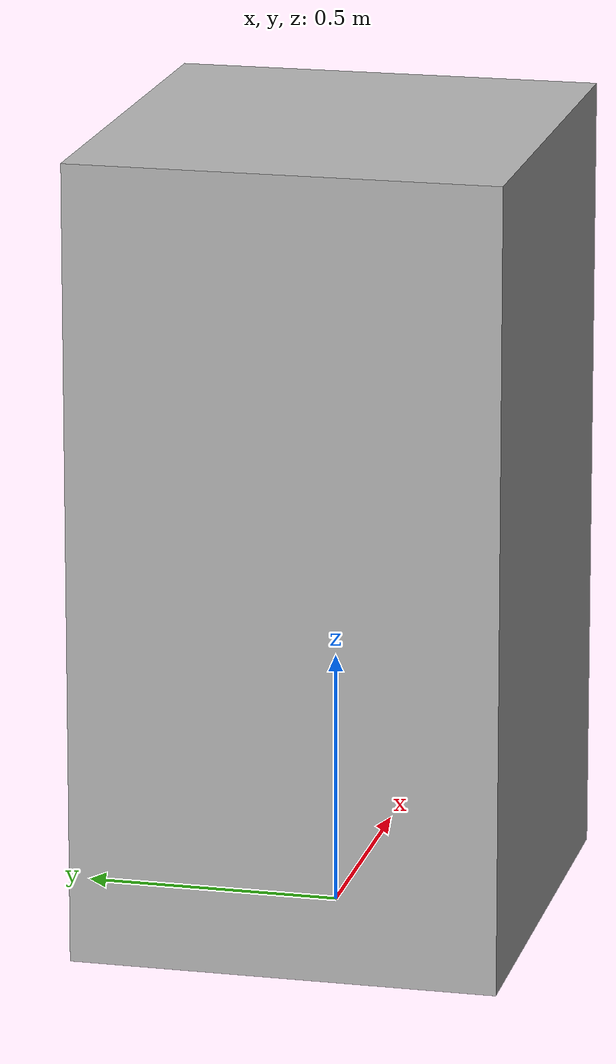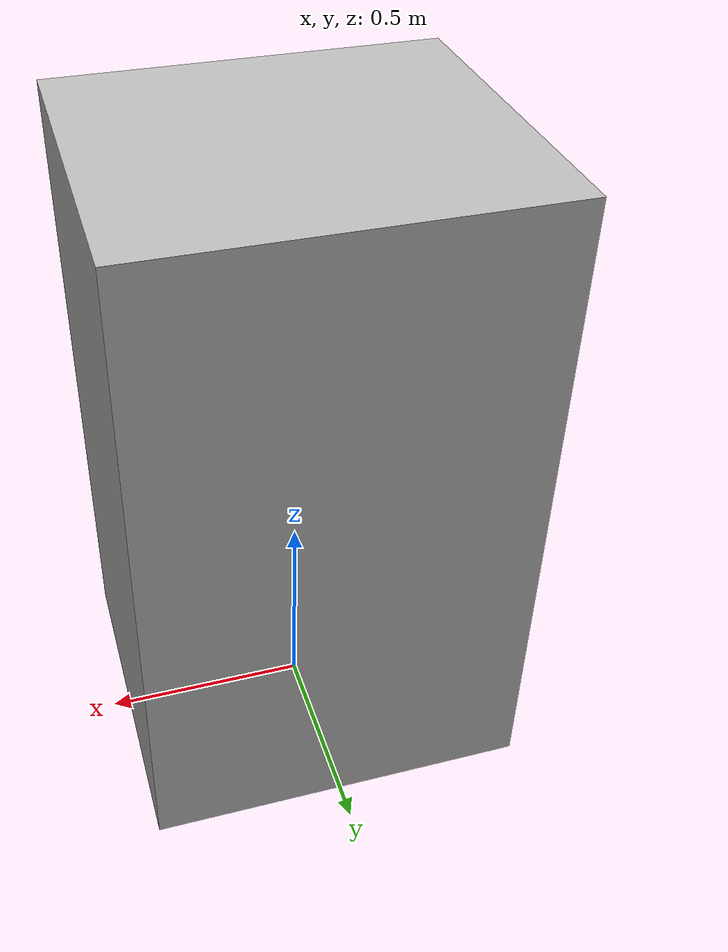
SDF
<?xml version="1.0"?>
<sdf version="1.6">
  <model name="amigo_case">
    <link name="1_link">
      <collision name="1_col">
        <geometry>
          <box>
            <size>0.92 0.83 1.56</size>
          </box>
        </geometry>
      </collision>
      <visual name="1_vis">
        <geometry>
          <box>
            <size>0.92 0.83 1.56</size>
          </box>
        </geometry>
      </visual>
      <pose>0 0 0.78 0 0 0</pose>
    </link>
    <link name="on_top_of">
      <virtual_volume name="on_top_of_vv">
        <geometry>
          <box>
            <size>0.86 0.77 0.25</size>
          </box>
        </geometry>
        <pose>0.0 0.0 1.705 0 0 0</pose>
      </virtual_volume>
    </link>
    <link name="in_front_of">
      <virtual_volume name="in_front_of_vv">
        <geometry>
          <box>
            <size>0.2 0.63 0.01</size>
          </box>
        </geometry>
        <pose>0.96 0.0 0.005 0 0 0</pose>
      </virtual_volume>
    </link>
    <static>true</static>
  </model>
</sdf>
